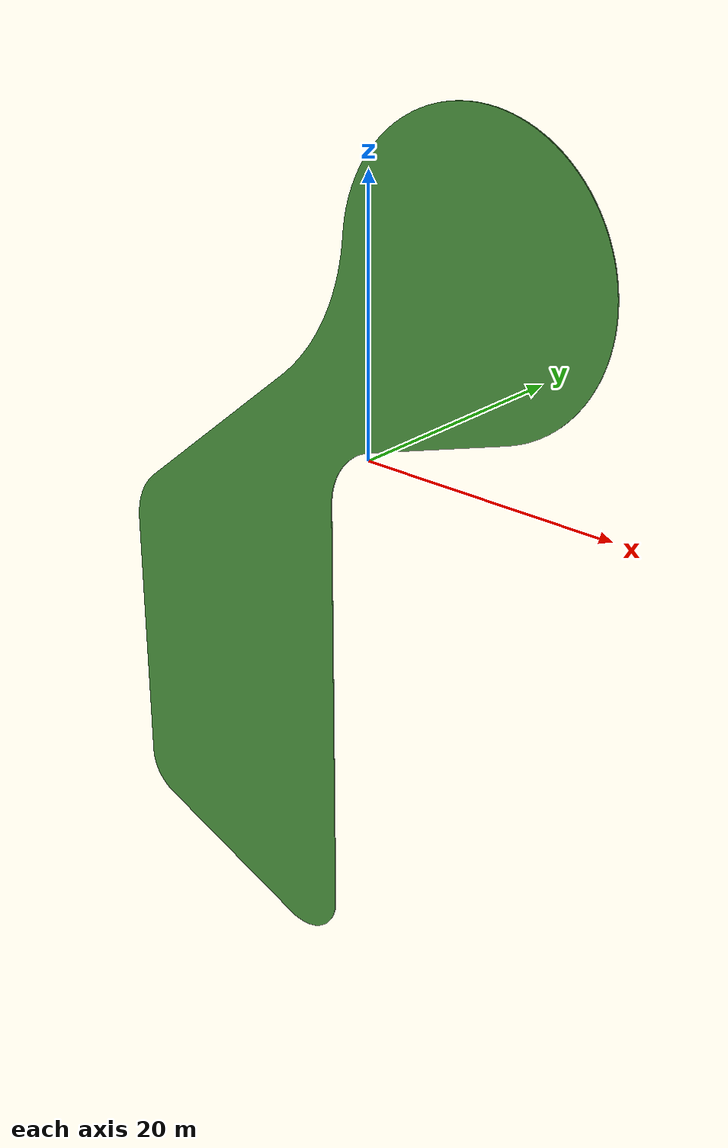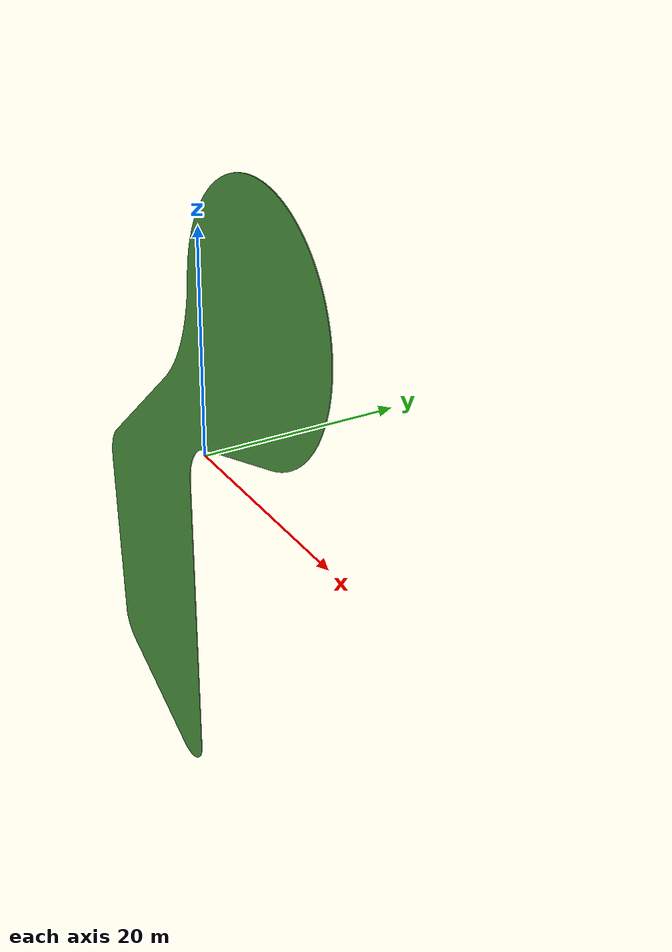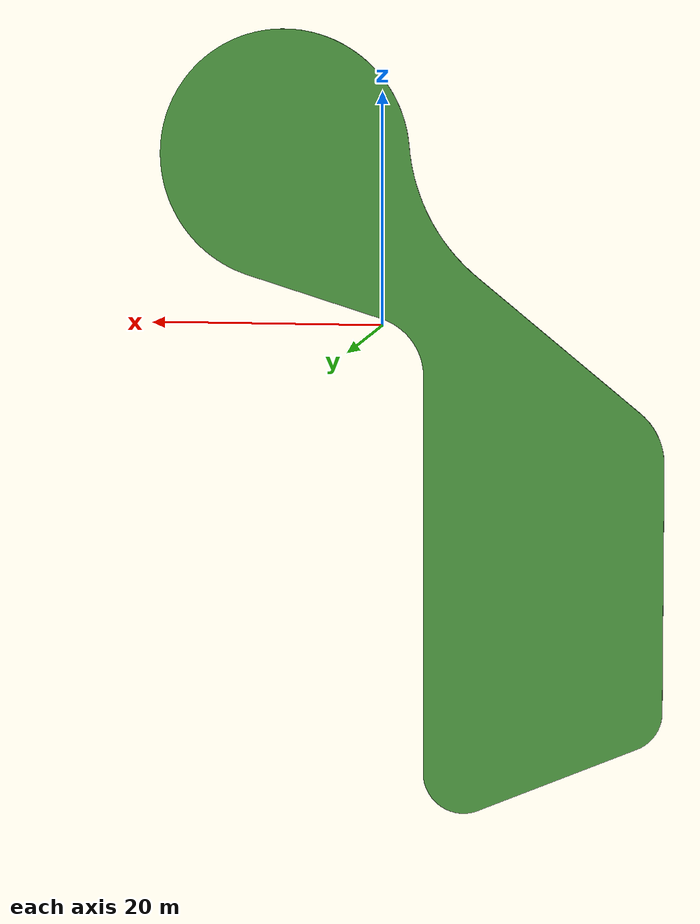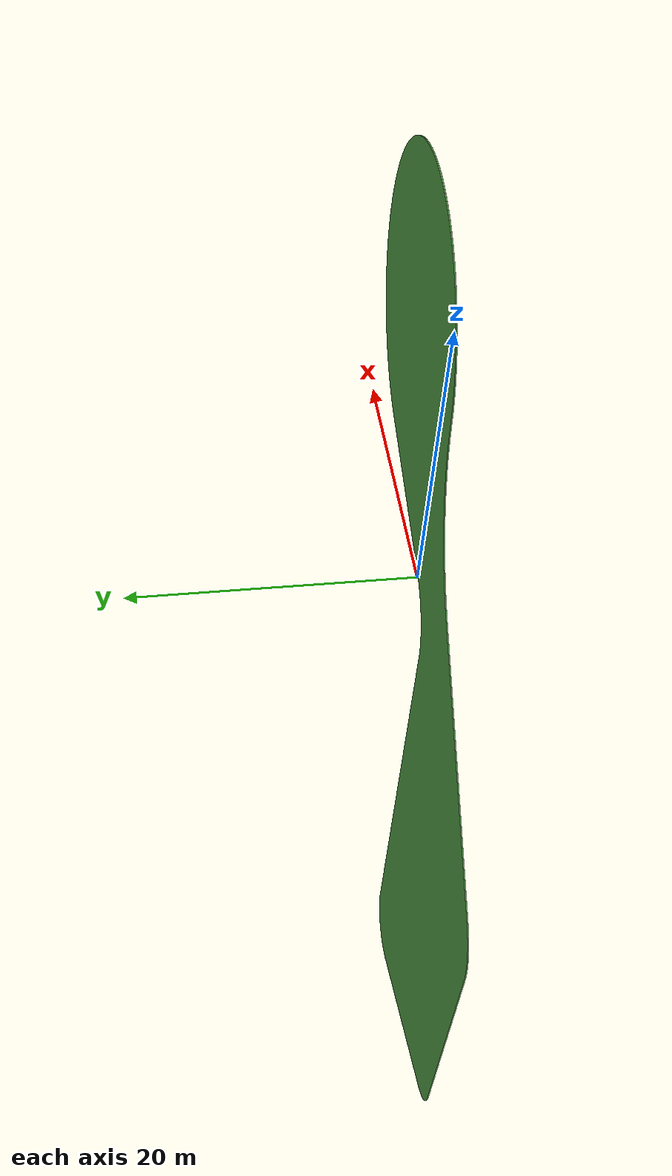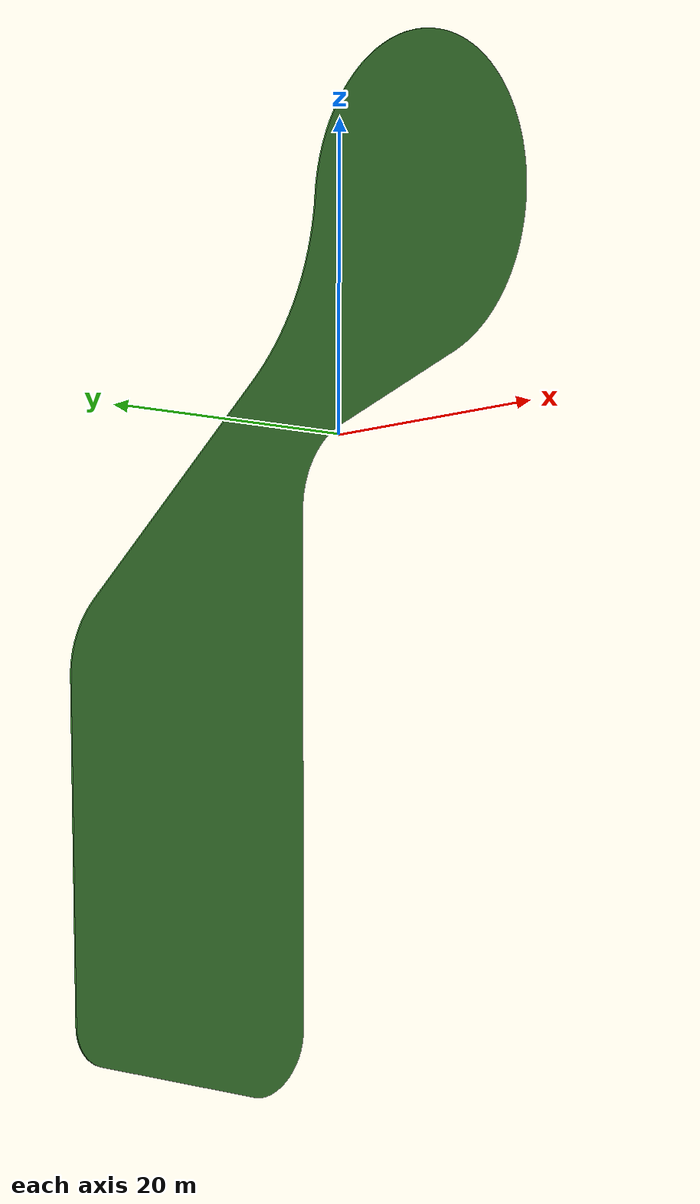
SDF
<?xml version='1.0'?>
<sdf version='1.6'>
  <model name="grass2">
    <static>true</static>
    <pose>0 0 0 0 0 0</pose>

    <link name="grass2">
      <pose>0 0 0 0 0 0</pose>
      <visual name="grass">
           <material>
            <script>
                <uri>model://grass2/materials/scripts</uri>
                <uri>model://grass2/materials/textures</uri>
                <name>vrc/grass</name>
            </script>
        </material>
        <geometry>
          <mesh>
            <uri>model://grass2/meshes/RT2_Grass.dae</uri>
            <scale>1.7 1.7 1.7</scale>
          </mesh>
        </geometry>
      </visual>
      <collision name="grass">
        <geometry>
          <mesh>
            <uri>model://grass2/meshes/RT2_Grass.dae</uri>
            <scale>1.7 1.7 1.7</scale>
          </mesh>
        </geometry>
      </collision>
    </link>

  </model>
</sdf>
